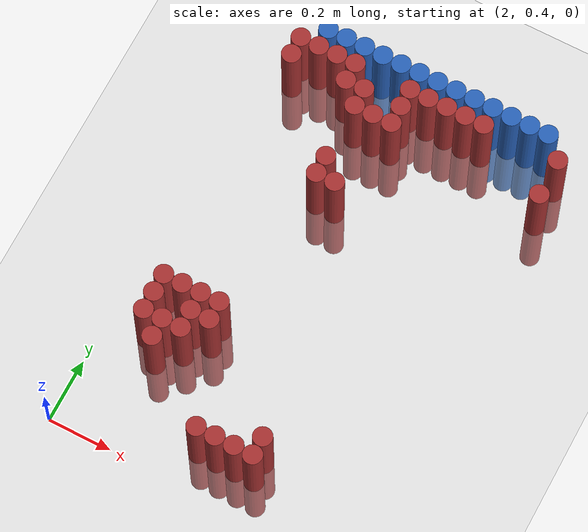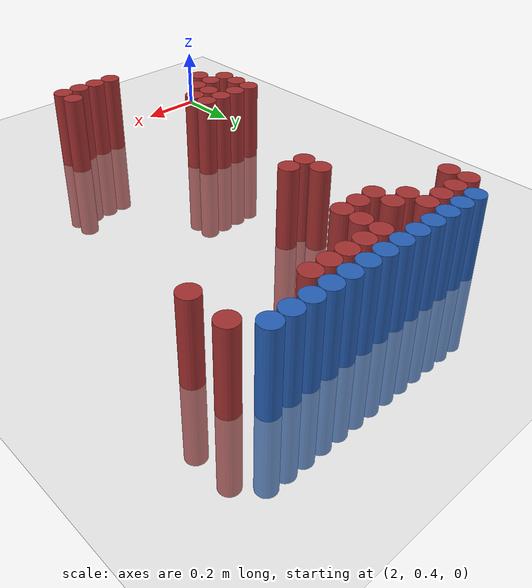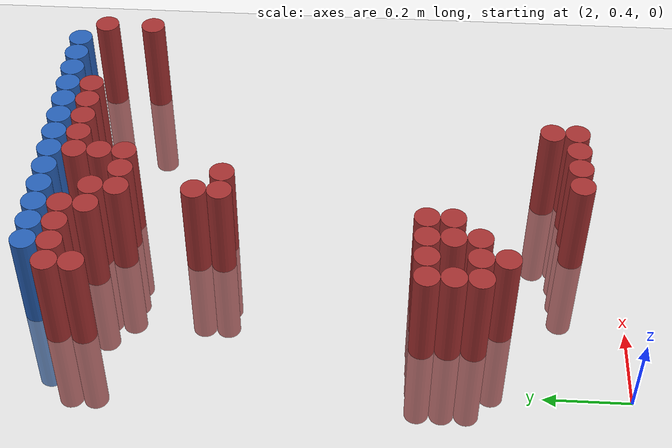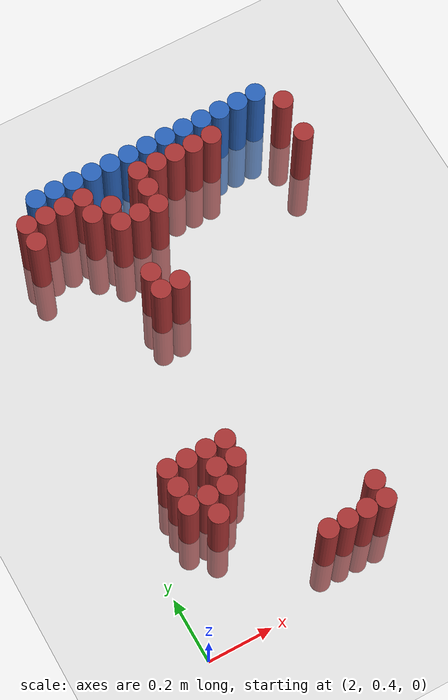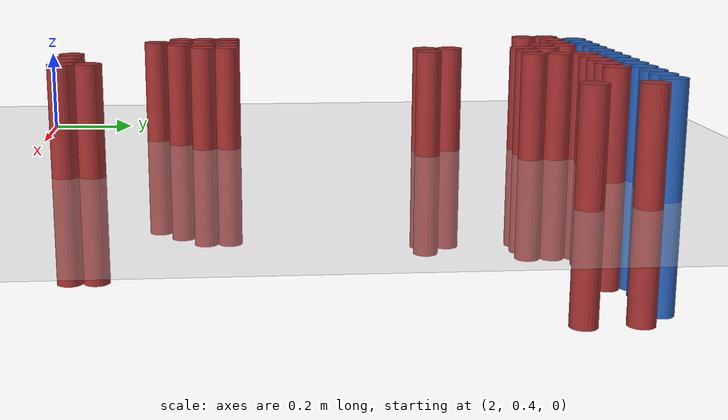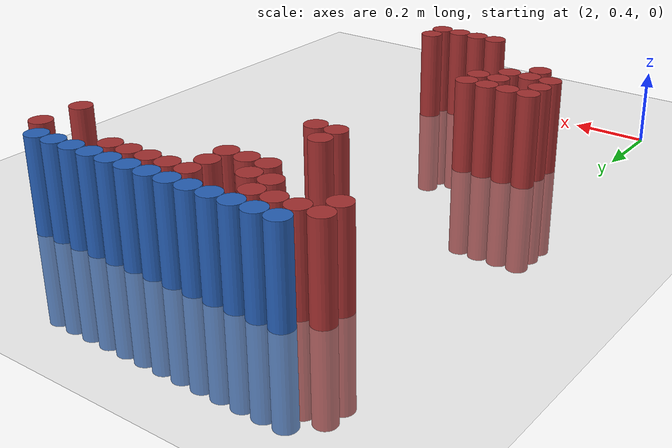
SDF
<sdf version="1.6">
 <world name="default">
  <model name="ground_plane">
   <static>1</static>
   <link name="link">
    <collision name="collision">
     <geometry><plane><normal>0 0 1</normal><size>100 100</size></plane></geometry>
     <surface><friction><ode><mu>100</mu><mu2>50</mu2></ode></friction></surface>
    </collision>
    <visual name="visual">
     <cast_shadows>0</cast_shadows>
     <geometry><plane><normal>0 0 1</normal><size>100 100</size></plane></geometry>
     <material>
      <script><uri>file://media/materials/scripts/gazebo.material</uri><name>Gazebo/Grey</name></script>
     </material>
    </visual>
   </link>
  </model>
  <model name="unit_cylinder_97">
   <static>1</static>
   <pose>2.190000 1.770000 0.000000 0.000000 0.000000 0.000000</pose>
   <link name="link">
    <inertial>
     <mass>1</mass>
     <inertia><ixx>0.145833</ixx><ixy>0</ixy><ixz>0</ixz><iyy>0.145833</iyy><iyz>0</iyz><izz>0.125</izz></inertia>
    </inertial>
    <collision name="collision">
     <geometry><cylinder><radius>0.030000</radius><length>0.5</length></cylinder></geometry>
    </collision>
    <visual name="visual">
     <geometry><cylinder><radius>0.030000</radius><length>0.5</length></cylinder></geometry>
     <material>
      <ambient>0.152000 0.379000 0.720000 1</ambient>
      <diffuse>0.152000 0.379000 0.720000 1</diffuse>
     </material>
     <material>
      <script><name>Gazebo/Grey</name><uri>file://media/materials/scripts/gazebo.material</uri></script>
     </material>
    </visual>
   </link>
  </model>
  <model name="unit_cylinder_98">
   <static>1</static>
   <pose>2.250000 1.770000 0.000000 0.000000 0.000000 0.000000</pose>
   <link name="link">
    <inertial>
     <mass>1</mass>
     <inertia><ixx>0.145833</ixx><ixy>0</ixy><ixz>0</ixz><iyy>0.145833</iyy><iyz>0</iyz><izz>0.125</izz></inertia>
    </inertial>
    <collision name="collision">
     <geometry><cylinder><radius>0.030000</radius><length>0.5</length></cylinder></geometry>
    </collision>
    <visual name="visual">
     <geometry><cylinder><radius>0.030000</radius><length>0.5</length></cylinder></geometry>
     <material>
      <ambient>0.152000 0.379000 0.720000 1</ambient>
      <diffuse>0.152000 0.379000 0.720000 1</diffuse>
     </material>
     <material>
      <script><name>Gazebo/Grey</name><uri>file://media/materials/scripts/gazebo.material</uri></script>
     </material>
    </visual>
   </link>
  </model>
  <model name="unit_cylinder_99">
   <static>1</static>
   <pose>2.310000 1.770000 0.000000 0.000000 0.000000 0.000000</pose>
   <link name="link">
    <inertial>
     <mass>1</mass>
     <inertia><ixx>0.145833</ixx><ixy>0</ixy><ixz>0</ixz><iyy>0.145833</iyy><iyz>0</iyz><izz>0.125</izz></inertia>
    </inertial>
    <collision name="collision">
     <geometry><cylinder><radius>0.030000</radius><length>0.5</length></cylinder></geometry>
    </collision>
    <visual name="visual">
     <geometry><cylinder><radius>0.030000</radius><length>0.5</length></cylinder></geometry>
     <material>
      <ambient>0.152000 0.379000 0.720000 1</ambient>
      <diffuse>0.152000 0.379000 0.720000 1</diffuse>
     </material>
     <material>
      <script><name>Gazebo/Grey</name><uri>file://media/materials/scripts/gazebo.material</uri></script>
     </material>
    </visual>
   </link>
  </model>
  <model name="unit_cylinder_100">
   <static>1</static>
   <pose>2.370000 1.770000 0.000000 0.000000 0.000000 0.000000</pose>
   <link name="link">
    <inertial>
     <mass>1</mass>
     <inertia><ixx>0.145833</ixx><ixy>0</ixy><ixz>0</ixz><iyy>0.145833</iyy><iyz>0</iyz><izz>0.125</izz></inertia>
    </inertial>
    <collision name="collision">
     <geometry><cylinder><radius>0.030000</radius><length>0.5</length></cylinder></geometry>
    </collision>
    <visual name="visual">
     <geometry><cylinder><radius>0.030000</radius><length>0.5</length></cylinder></geometry>
     <material>
      <ambient>0.152000 0.379000 0.720000 1</ambient>
      <diffuse>0.152000 0.379000 0.720000 1</diffuse>
     </material>
     <material>
      <script><name>Gazebo/Grey</name><uri>file://media/materials/scripts/gazebo.material</uri></script>
     </material>
    </visual>
   </link>
  </model>
  <model name="unit_cylinder_101">
   <static>1</static>
   <pose>2.430000 1.770000 0.000000 0.000000 0.000000 0.000000</pose>
   <link name="link">
    <inertial>
     <mass>1</mass>
     <inertia><ixx>0.145833</ixx><ixy>0</ixy><ixz>0</ixz><iyy>0.145833</iyy><iyz>0</iyz><izz>0.125</izz></inertia>
    </inertial>
    <collision name="collision">
     <geometry><cylinder><radius>0.030000</radius><length>0.5</length></cylinder></geometry>
    </collision>
    <visual name="visual">
     <geometry><cylinder><radius>0.030000</radius><length>0.5</length></cylinder></geometry>
     <material>
      <ambient>0.152000 0.379000 0.720000 1</ambient>
      <diffuse>0.152000 0.379000 0.720000 1</diffuse>
     </material>
     <material>
      <script><name>Gazebo/Grey</name><uri>file://media/materials/scripts/gazebo.material</uri></script>
     </material>
    </visual>
   </link>
  </model>
  <model name="unit_cylinder_102">
   <static>1</static>
   <pose>2.490000 1.770000 0.000000 0.000000 0.000000 0.000000</pose>
   <link name="link">
    <inertial>
     <mass>1</mass>
     <inertia><ixx>0.145833</ixx><ixy>0</ixy><ixz>0</ixz><iyy>0.145833</iyy><iyz>0</iyz><izz>0.125</izz></inertia>
    </inertial>
    <collision name="collision">
     <geometry><cylinder><radius>0.030000</radius><length>0.5</length></cylinder></geometry>
    </collision>
    <visual name="visual">
     <geometry><cylinder><radius>0.030000</radius><length>0.5</length></cylinder></geometry>
     <material>
      <ambient>0.152000 0.379000 0.720000 1</ambient>
      <diffuse>0.152000 0.379000 0.720000 1</diffuse>
     </material>
     <material>
      <script><name>Gazebo/Grey</name><uri>file://media/materials/scripts/gazebo.material</uri></script>
     </material>
    </visual>
   </link>
  </model>
  <model name="unit_cylinder_103">
   <static>1</static>
   <pose>2.550000 1.770000 0.000000 0.000000 0.000000 0.000000</pose>
   <link name="link">
    <inertial>
     <mass>1</mass>
     <inertia><ixx>0.145833</ixx><ixy>0</ixy><ixz>0</ixz><iyy>0.145833</iyy><iyz>0</iyz><izz>0.125</izz></inertia>
    </inertial>
    <collision name="collision">
     <geometry><cylinder><radius>0.030000</radius><length>0.5</length></cylinder></geometry>
    </collision>
    <visual name="visual">
     <geometry><cylinder><radius>0.030000</radius><length>0.5</length></cylinder></geometry>
     <material>
      <ambient>0.152000 0.379000 0.720000 1</ambient>
      <diffuse>0.152000 0.379000 0.720000 1</diffuse>
     </material>
     <material>
      <script><name>Gazebo/Grey</name><uri>file://media/materials/scripts/gazebo.material</uri></script>
     </material>
    </visual>
   </link>
  </model>
  <model name="unit_cylinder_104">
   <static>1</static>
   <pose>2.610000 1.770000 0.000000 0.000000 0.000000 0.000000</pose>
   <link name="link">
    <inertial>
     <mass>1</mass>
     <inertia><ixx>0.145833</ixx><ixy>0</ixy><ixz>0</ixz><iyy>0.145833</iyy><iyz>0</iyz><izz>0.125</izz></inertia>
    </inertial>
    <collision name="collision">
     <geometry><cylinder><radius>0.030000</radius><length>0.5</length></cylinder></geometry>
    </collision>
    <visual name="visual">
     <geometry><cylinder><radius>0.030000</radius><length>0.5</length></cylinder></geometry>
     <material>
      <ambient>0.152000 0.379000 0.720000 1</ambient>
      <diffuse>0.152000 0.379000 0.720000 1</diffuse>
     </material>
     <material>
      <script><name>Gazebo/Grey</name><uri>file://media/materials/scripts/gazebo.material</uri></script>
     </material>
    </visual>
   </link>
  </model>
  <model name="unit_cylinder_105">
   <static>1</static>
   <pose>2.670000 1.770000 0.000000 0.000000 0.000000 0.000000</pose>
   <link name="link">
    <inertial>
     <mass>1</mass>
     <inertia><ixx>0.145833</ixx><ixy>0</ixy><ixz>0</ixz><iyy>0.145833</iyy><iyz>0</iyz><izz>0.125</izz></inertia>
    </inertial>
    <collision name="collision">
     <geometry><cylinder><radius>0.030000</radius><length>0.5</length></cylinder></geometry>
    </collision>
    <visual name="visual">
     <geometry><cylinder><radius>0.030000</radius><length>0.5</length></cylinder></geometry>
     <material>
      <ambient>0.152000 0.379000 0.720000 1</ambient>
      <diffuse>0.152000 0.379000 0.720000 1</diffuse>
     </material>
     <material>
      <script><name>Gazebo/Grey</name><uri>file://media/materials/scripts/gazebo.material</uri></script>
     </material>
    </visual>
   </link>
  </model>
  <model name="unit_cylinder_106">
   <static>1</static>
   <pose>2.730000 1.770000 0.000000 0.000000 0.000000 0.000000</pose>
   <link name="link">
    <inertial>
     <mass>1</mass>
     <inertia><ixx>0.145833</ixx><ixy>0</ixy><ixz>0</ixz><iyy>0.145833</iyy><iyz>0</iyz><izz>0.125</izz></inertia>
    </inertial>
    <collision name="collision">
     <geometry><cylinder><radius>0.030000</radius><length>0.5</length></cylinder></geometry>
    </collision>
    <visual name="visual">
     <geometry><cylinder><radius>0.030000</radius><length>0.5</length></cylinder></geometry>
     <material>
      <ambient>0.152000 0.379000 0.720000 1</ambient>
      <diffuse>0.152000 0.379000 0.720000 1</diffuse>
     </material>
     <material>
      <script><name>Gazebo/Grey</name><uri>file://media/materials/scripts/gazebo.material</uri></script>
     </material>
    </visual>
   </link>
  </model>
  <model name="unit_cylinder_107">
   <static>1</static>
   <pose>2.790000 1.770000 0.000000 0.000000 0.000000 0.000000</pose>
   <link name="link">
    <inertial>
     <mass>1</mass>
     <inertia><ixx>0.145833</ixx><ixy>0</ixy><ixz>0</ixz><iyy>0.145833</iyy><iyz>0</iyz><izz>0.125</izz></inertia>
    </inertial>
    <collision name="collision">
     <geometry><cylinder><radius>0.030000</radius><length>0.5</length></cylinder></geometry>
    </collision>
    <visual name="visual">
     <geometry><cylinder><radius>0.030000</radius><length>0.5</length></cylinder></geometry>
     <material>
      <ambient>0.152000 0.379000 0.720000 1</ambient>
      <diffuse>0.152000 0.379000 0.720000 1</diffuse>
     </material>
     <material>
      <script><name>Gazebo/Grey</name><uri>file://media/materials/scripts/gazebo.material</uri></script>
     </material>
    </visual>
   </link>
  </model>
  <model name="unit_cylinder_108">
   <static>1</static>
   <pose>2.850000 1.770000 0.000000 0.000000 0.000000 0.000000</pose>
   <link name="link">
    <inertial>
     <mass>1</mass>
     <inertia><ixx>0.145833</ixx><ixy>0</ixy><ixz>0</ixz><iyy>0.145833</iyy><iyz>0</iyz><izz>0.125</izz></inertia>
    </inertial>
    <collision name="collision">
     <geometry><cylinder><radius>0.030000</radius><length>0.5</length></cylinder></geometry>
    </collision>
    <visual name="visual">
     <geometry><cylinder><radius>0.030000</radius><length>0.5</length></cylinder></geometry>
     <material>
      <ambient>0.152000 0.379000 0.720000 1</ambient>
      <diffuse>0.152000 0.379000 0.720000 1</diffuse>
     </material>
     <material>
      <script><name>Gazebo/Grey</name><uri>file://media/materials/scripts/gazebo.material</uri></script>
     </material>
    </visual>
   </link>
  </model>
  <model name="unit_cylinder_109">
   <static>1</static>
   <pose>2.910000 1.770000 0.000000 0.000000 0.000000 0.000000</pose>
   <link name="link">
    <inertial>
     <mass>1</mass>
     <inertia><ixx>0.145833</ixx><ixy>0</ixy><ixz>0</ixz><iyy>0.145833</iyy><iyz>0</iyz><izz>0.125</izz></inertia>
    </inertial>
    <collision name="collision">
     <geometry><cylinder><radius>0.030000</radius><length>0.5</length></cylinder></geometry>
    </collision>
    <visual name="visual">
     <geometry><cylinder><radius>0.030000</radius><length>0.5</length></cylinder></geometry>
     <material>
      <ambient>0.152000 0.379000 0.720000 1</ambient>
      <diffuse>0.152000 0.379000 0.720000 1</diffuse>
     </material>
     <material>
      <script><name>Gazebo/Grey</name><uri>file://media/materials/scripts/gazebo.material</uri></script>
     </material>
    </visual>
   </link>
  </model>
  <model name="unit_cylinder_125">
   <static>1</static>
   <pose>2.130000 1.710000 0.000000 0.000000 0.000000 0.000000</pose>
   <link name="link">
    <inertial>
     <mass>1</mass>
     <inertia><ixx>0.145833</ixx><ixy>0</ixy><ixz>0</ixz><iyy>0.145833</iyy><iyz>0</iyz><izz>0.125</izz></inertia>
    </inertial>
    <collision name="collision">
     <geometry><cylinder><radius>0.030000</radius><length>0.5</length></cylinder></geometry>
    </collision>
    <visual name="visual">
     <geometry><cylinder><radius>0.030000</radius><length>0.5</length></cylinder></geometry>
     <material>
      <ambient>0.648000 0.192000 0.192000 1</ambient>
      <diffuse>0.648000 0.192000 0.192000 1</diffuse>
     </material>
     <material>
      <script><name>Gazebo/Grey</name><uri>file://media/materials/scripts/gazebo.material</uri></script>
     </material>
    </visual>
   </link>
  </model>
  <model name="unit_cylinder_126">
   <static>1</static>
   <pose>2.190000 1.710000 0.000000 0.000000 0.000000 0.000000</pose>
   <link name="link">
    <inertial>
     <mass>1</mass>
     <inertia><ixx>0.145833</ixx><ixy>0</ixy><ixz>0</ixz><iyy>0.145833</iyy><iyz>0</iyz><izz>0.125</izz></inertia>
    </inertial>
    <collision name="collision">
     <geometry><cylinder><radius>0.030000</radius><length>0.5</length></cylinder></geometry>
    </collision>
    <visual name="visual">
     <geometry><cylinder><radius>0.030000</radius><length>0.5</length></cylinder></geometry>
     <material>
      <ambient>0.648000 0.192000 0.192000 1</ambient>
      <diffuse>0.648000 0.192000 0.192000 1</diffuse>
     </material>
     <material>
      <script><name>Gazebo/Grey</name><uri>file://media/materials/scripts/gazebo.material</uri></script>
     </material>
    </visual>
   </link>
  </model>
  <model name="unit_cylinder_127">
   <static>1</static>
   <pose>2.250000 1.710000 0.000000 0.000000 0.000000 0.000000</pose>
   <link name="link">
    <inertial>
     <mass>1</mass>
     <inertia><ixx>0.145833</ixx><ixy>0</ixy><ixz>0</ixz><iyy>0.145833</iyy><iyz>0</iyz><izz>0.125</izz></inertia>
    </inertial>
    <collision name="collision">
     <geometry><cylinder><radius>0.030000</radius><length>0.5</length></cylinder></geometry>
    </collision>
    <visual name="visual">
     <geometry><cylinder><radius>0.030000</radius><length>0.5</length></cylinder></geometry>
     <material>
      <ambient>0.648000 0.192000 0.192000 1</ambient>
      <diffuse>0.648000 0.192000 0.192000 1</diffuse>
     </material>
     <material>
      <script><name>Gazebo/Grey</name><uri>file://media/materials/scripts/gazebo.material</uri></script>
     </material>
    </visual>
   </link>
  </model>
  <model name="unit_cylinder_128">
   <static>1</static>
   <pose>2.310000 1.710000 0.000000 0.000000 0.000000 0.000000</pose>
   <link name="link">
    <inertial>
     <mass>1</mass>
     <inertia><ixx>0.145833</ixx><ixy>0</ixy><ixz>0</ixz><iyy>0.145833</iyy><iyz>0</iyz><izz>0.125</izz></inertia>
    </inertial>
    <collision name="collision">
     <geometry><cylinder><radius>0.030000</radius><length>0.5</length></cylinder></geometry>
    </collision>
    <visual name="visual">
     <geometry><cylinder><radius>0.030000</radius><length>0.5</length></cylinder></geometry>
     <material>
      <ambient>0.648000 0.192000 0.192000 1</ambient>
      <diffuse>0.648000 0.192000 0.192000 1</diffuse>
     </material>
     <material>
      <script><name>Gazebo/Grey</name><uri>file://media/materials/scripts/gazebo.material</uri></script>
     </material>
    </visual>
   </link>
  </model>
  <model name="unit_cylinder_129">
   <static>1</static>
   <pose>2.490000 1.710000 0.000000 0.000000 0.000000 0.000000</pose>
   <link name="link">
    <inertial>
     <mass>1</mass>
     <inertia><ixx>0.145833</ixx><ixy>0</ixy><ixz>0</ixz><iyy>0.145833</iyy><iyz>0</iyz><izz>0.125</izz></inertia>
    </inertial>
    <collision name="collision">
     <geometry><cylinder><radius>0.030000</radius><length>0.5</length></cylinder></geometry>
    </collision>
    <visual name="visual">
     <geometry><cylinder><radius>0.030000</radius><length>0.5</length></cylinder></geometry>
     <material>
      <ambient>0.648000 0.192000 0.192000 1</ambient>
      <diffuse>0.648000 0.192000 0.192000 1</diffuse>
     </material>
     <material>
      <script><name>Gazebo/Grey</name><uri>file://media/materials/scripts/gazebo.material</uri></script>
     </material>
    </visual>
   </link>
  </model>
  <model name="unit_cylinder_130">
   <static>1</static>
   <pose>2.550000 1.710000 0.000000 0.000000 0.000000 0.000000</pose>
   <link name="link">
    <inertial>
     <mass>1</mass>
     <inertia><ixx>0.145833</ixx><ixy>0</ixy><ixz>0</ixz><iyy>0.145833</iyy><iyz>0</iyz><izz>0.125</izz></inertia>
    </inertial>
    <collision name="collision">
     <geometry><cylinder><radius>0.030000</radius><length>0.5</length></cylinder></geometry>
    </collision>
    <visual name="visual">
     <geometry><cylinder><radius>0.030000</radius><length>0.5</length></cylinder></geometry>
     <material>
      <ambient>0.648000 0.192000 0.192000 1</ambient>
      <diffuse>0.648000 0.192000 0.192000 1</diffuse>
     </material>
     <material>
      <script><name>Gazebo/Grey</name><uri>file://media/materials/scripts/gazebo.material</uri></script>
     </material>
    </visual>
   </link>
  </model>
  <model name="unit_cylinder_131">
   <static>1</static>
   <pose>2.610000 1.710000 0.000000 0.000000 0.000000 0.000000</pose>
   <link name="link">
    <inertial>
     <mass>1</mass>
     <inertia><ixx>0.145833</ixx><ixy>0</ixy><ixz>0</ixz><iyy>0.145833</iyy><iyz>0</iyz><izz>0.125</izz></inertia>
    </inertial>
    <collision name="collision">
     <geometry><cylinder><radius>0.030000</radius><length>0.5</length></cylinder></geometry>
    </collision>
    <visual name="visual">
     <geometry><cylinder><radius>0.030000</radius><length>0.5</length></cylinder></geometry>
     <material>
      <ambient>0.648000 0.192000 0.192000 1</ambient>
      <diffuse>0.648000 0.192000 0.192000 1</diffuse>
     </material>
     <material>
      <script><name>Gazebo/Grey</name><uri>file://media/materials/scripts/gazebo.material</uri></script>
     </material>
    </visual>
   </link>
  </model>
  <model name="unit_cylinder_132">
   <static>1</static>
   <pose>2.670000 1.710000 0.000000 0.000000 0.000000 0.000000</pose>
   <link name="link">
    <inertial>
     <mass>1</mass>
     <inertia><ixx>0.145833</ixx><ixy>0</ixy><ixz>0</ixz><iyy>0.145833</iyy><iyz>0</iyz><izz>0.125</izz></inertia>
    </inertial>
    <collision name="collision">
     <geometry><cylinder><radius>0.030000</radius><length>0.5</length></cylinder></geometry>
    </collision>
    <visual name="visual">
     <geometry><cylinder><radius>0.030000</radius><length>0.5</length></cylinder></geometry>
     <material>
      <ambient>0.648000 0.192000 0.192000 1</ambient>
      <diffuse>0.648000 0.192000 0.192000 1</diffuse>
     </material>
     <material>
      <script><name>Gazebo/Grey</name><uri>file://media/materials/scripts/gazebo.material</uri></script>
     </material>
    </visual>
   </link>
  </model>
  <model name="unit_cylinder_133">
   <static>1</static>
   <pose>2.730000 1.710000 0.000000 0.000000 0.000000 0.000000</pose>
   <link name="link">
    <inertial>
     <mass>1</mass>
     <inertia><ixx>0.145833</ixx><ixy>0</ixy><ixz>0</ixz><iyy>0.145833</iyy><iyz>0</iyz><izz>0.125</izz></inertia>
    </inertial>
    <collision name="collision">
     <geometry><cylinder><radius>0.030000</radius><length>0.5</length></cylinder></geometry>
    </collision>
    <visual name="visual">
     <geometry><cylinder><radius>0.030000</radius><length>0.5</length></cylinder></geometry>
     <material>
      <ambient>0.648000 0.192000 0.192000 1</ambient>
      <diffuse>0.648000 0.192000 0.192000 1</diffuse>
     </material>
     <material>
      <script><name>Gazebo/Grey</name><uri>file://media/materials/scripts/gazebo.material</uri></script>
     </material>
    </visual>
   </link>
  </model>
  <model name="unit_cylinder_134">
   <static>1</static>
   <pose>2.970000 1.710000 0.000000 0.000000 0.000000 0.000000</pose>
   <link name="link">
    <inertial>
     <mass>1</mass>
     <inertia><ixx>0.145833</ixx><ixy>0</ixy><ixz>0</ixz><iyy>0.145833</iyy><iyz>0</iyz><izz>0.125</izz></inertia>
    </inertial>
    <collision name="collision">
     <geometry><cylinder><radius>0.030000</radius><length>0.5</length></cylinder></geometry>
    </collision>
    <visual name="visual">
     <geometry><cylinder><radius>0.030000</radius><length>0.5</length></cylinder></geometry>
     <material>
      <ambient>0.648000 0.192000 0.192000 1</ambient>
      <diffuse>0.648000 0.192000 0.192000 1</diffuse>
     </material>
     <material>
      <script><name>Gazebo/Grey</name><uri>file://media/materials/scripts/gazebo.material</uri></script>
     </material>
    </visual>
   </link>
  </model>
  <model name="unit_cylinder_138">
   <static>1</static>
   <pose>2.130000 1.650000 0.000000 0.000000 0.000000 0.000000</pose>
   <link name="link">
    <inertial>
     <mass>1</mass>
     <inertia><ixx>0.145833</ixx><ixy>0</ixy><ixz>0</ixz><iyy>0.145833</iyy><iyz>0</iyz><izz>0.125</izz></inertia>
    </inertial>
    <collision name="collision">
     <geometry><cylinder><radius>0.030000</radius><length>0.5</length></cylinder></geometry>
    </collision>
    <visual name="visual">
     <geometry><cylinder><radius>0.030000</radius><length>0.5</length></cylinder></geometry>
     <material>
      <ambient>0.648000 0.192000 0.192000 1</ambient>
      <diffuse>0.648000 0.192000 0.192000 1</diffuse>
     </material>
     <material>
      <script><name>Gazebo/Grey</name><uri>file://media/materials/scripts/gazebo.material</uri></script>
     </material>
    </visual>
   </link>
  </model>
  <model name="unit_cylinder_139">
   <static>1</static>
   <pose>2.310000 1.650000 0.000000 0.000000 0.000000 0.000000</pose>
   <link name="link">
    <inertial>
     <mass>1</mass>
     <inertia><ixx>0.145833</ixx><ixy>0</ixy><ixz>0</ixz><iyy>0.145833</iyy><iyz>0</iyz><izz>0.125</izz></inertia>
    </inertial>
    <collision name="collision">
     <geometry><cylinder><radius>0.030000</radius><length>0.5</length></cylinder></geometry>
    </collision>
    <visual name="visual">
     <geometry><cylinder><radius>0.030000</radius><length>0.5</length></cylinder></geometry>
     <material>
      <ambient>0.648000 0.192000 0.192000 1</ambient>
      <diffuse>0.648000 0.192000 0.192000 1</diffuse>
     </material>
     <material>
      <script><name>Gazebo/Grey</name><uri>file://media/materials/scripts/gazebo.material</uri></script>
     </material>
    </visual>
   </link>
  </model>
  <model name="unit_cylinder_140">
   <static>1</static>
   <pose>2.370000 1.650000 0.000000 0.000000 0.000000 0.000000</pose>
   <link name="link">
    <inertial>
     <mass>1</mass>
     <inertia><ixx>0.145833</ixx><ixy>0</ixy><ixz>0</ixz><iyy>0.145833</iyy><iyz>0</iyz><izz>0.125</izz></inertia>
    </inertial>
    <collision name="collision">
     <geometry><cylinder><radius>0.030000</radius><length>0.5</length></cylinder></geometry>
    </collision>
    <visual name="visual">
     <geometry><cylinder><radius>0.030000</radius><length>0.5</length></cylinder></geometry>
     <material>
      <ambient>0.648000 0.192000 0.192000 1</ambient>
      <diffuse>0.648000 0.192000 0.192000 1</diffuse>
     </material>
     <material>
      <script><name>Gazebo/Grey</name><uri>file://media/materials/scripts/gazebo.material</uri></script>
     </material>
    </visual>
   </link>
  </model>
  <model name="unit_cylinder_141">
   <static>1</static>
   <pose>2.490000 1.650000 0.000000 0.000000 0.000000 0.000000</pose>
   <link name="link">
    <inertial>
     <mass>1</mass>
     <inertia><ixx>0.145833</ixx><ixy>0</ixy><ixz>0</ixz><iyy>0.145833</iyy><iyz>0</iyz><izz>0.125</izz></inertia>
    </inertial>
    <collision name="collision">
     <geometry><cylinder><radius>0.030000</radius><length>0.5</length></cylinder></geometry>
    </collision>
    <visual name="visual">
     <geometry><cylinder><radius>0.030000</radius><length>0.5</length></cylinder></geometry>
     <material>
      <ambient>0.648000 0.192000 0.192000 1</ambient>
      <diffuse>0.648000 0.192000 0.192000 1</diffuse>
     </material>
     <material>
      <script><name>Gazebo/Grey</name><uri>file://media/materials/scripts/gazebo.material</uri></script>
     </material>
    </visual>
   </link>
  </model>
  <model name="unit_cylinder_145">
   <static>1</static>
   <pose>2.370000 1.590000 0.000000 0.000000 0.000000 0.000000</pose>
   <link name="link">
    <inertial>
     <mass>1</mass>
     <inertia><ixx>0.145833</ixx><ixy>0</ixy><ixz>0</ixz><iyy>0.145833</iyy><iyz>0</iyz><izz>0.125</izz></inertia>
    </inertial>
    <collision name="collision">
     <geometry><cylinder><radius>0.030000</radius><length>0.5</length></cylinder></geometry>
    </collision>
    <visual name="visual">
     <geometry><cylinder><radius>0.030000</radius><length>0.5</length></cylinder></geometry>
     <material>
      <ambient>0.648000 0.192000 0.192000 1</ambient>
      <diffuse>0.648000 0.192000 0.192000 1</diffuse>
     </material>
     <material>
      <script><name>Gazebo/Grey</name><uri>file://media/materials/scripts/gazebo.material</uri></script>
     </material>
    </visual>
   </link>
  </model>
  <model name="unit_cylinder_146">
   <static>1</static>
   <pose>2.430000 1.590000 0.000000 0.000000 0.000000 0.000000</pose>
   <link name="link">
    <inertial>
     <mass>1</mass>
     <inertia><ixx>0.145833</ixx><ixy>0</ixy><ixz>0</ixz><iyy>0.145833</iyy><iyz>0</iyz><izz>0.125</izz></inertia>
    </inertial>
    <collision name="collision">
     <geometry><cylinder><radius>0.030000</radius><length>0.5</length></cylinder></geometry>
    </collision>
    <visual name="visual">
     <geometry><cylinder><radius>0.030000</radius><length>0.5</length></cylinder></geometry>
     <material>
      <ambient>0.648000 0.192000 0.192000 1</ambient>
      <diffuse>0.648000 0.192000 0.192000 1</diffuse>
     </material>
     <material>
      <script><name>Gazebo/Grey</name><uri>file://media/materials/scripts/gazebo.material</uri></script>
     </material>
    </visual>
   </link>
  </model>
  <model name="unit_cylinder_147">
   <static>1</static>
   <pose>2.490000 1.590000 0.000000 0.000000 0.000000 0.000000</pose>
   <link name="link">
    <inertial>
     <mass>1</mass>
     <inertia><ixx>0.145833</ixx><ixy>0</ixy><ixz>0</ixz><iyy>0.145833</iyy><iyz>0</iyz><izz>0.125</izz></inertia>
    </inertial>
    <collision name="collision">
     <geometry><cylinder><radius>0.030000</radius><length>0.5</length></cylinder></geometry>
    </collision>
    <visual name="visual">
     <geometry><cylinder><radius>0.030000</radius><length>0.5</length></cylinder></geometry>
     <material>
      <ambient>0.648000 0.192000 0.192000 1</ambient>
      <diffuse>0.648000 0.192000 0.192000 1</diffuse>
     </material>
     <material>
      <script><name>Gazebo/Grey</name><uri>file://media/materials/scripts/gazebo.material</uri></script>
     </material>
    </visual>
   </link>
  </model>
  <model name="unit_cylinder_148">
   <static>1</static>
   <pose>2.970000 1.590000 0.000000 0.000000 0.000000 0.000000</pose>
   <link name="link">
    <inertial>
     <mass>1</mass>
     <inertia><ixx>0.145833</ixx><ixy>0</ixy><ixz>0</ixz><iyy>0.145833</iyy><iyz>0</iyz><izz>0.125</izz></inertia>
    </inertial>
    <collision name="collision">
     <geometry><cylinder><radius>0.030000</radius><length>0.5</length></cylinder></geometry>
    </collision>
    <visual name="visual">
     <geometry><cylinder><radius>0.030000</radius><length>0.5</length></cylinder></geometry>
     <material>
      <ambient>0.648000 0.192000 0.192000 1</ambient>
      <diffuse>0.648000 0.192000 0.192000 1</diffuse>
     </material>
     <material>
      <script><name>Gazebo/Grey</name><uri>file://media/materials/scripts/gazebo.material</uri></script>
     </material>
    </visual>
   </link>
  </model>
  <model name="unit_cylinder_160">
   <static>1</static>
   <pose>2.370000 1.410000 0.000000 0.000000 0.000000 0.000000</pose>
   <link name="link">
    <inertial>
     <mass>1</mass>
     <inertia><ixx>0.145833</ixx><ixy>0</ixy><ixz>0</ixz><iyy>0.145833</iyy><iyz>0</iyz><izz>0.125</izz></inertia>
    </inertial>
    <collision name="collision">
     <geometry><cylinder><radius>0.030000</radius><length>0.5</length></cylinder></geometry>
    </collision>
    <visual name="visual">
     <geometry><cylinder><radius>0.030000</radius><length>0.5</length></cylinder></geometry>
     <material>
      <ambient>0.648000 0.192000 0.192000 1</ambient>
      <diffuse>0.648000 0.192000 0.192000 1</diffuse>
     </material>
     <material>
      <script><name>Gazebo/Grey</name><uri>file://media/materials/scripts/gazebo.material</uri></script>
     </material>
    </visual>
   </link>
  </model>
  <model name="unit_cylinder_162">
   <static>1</static>
   <pose>2.370000 1.350000 0.000000 0.000000 0.000000 0.000000</pose>
   <link name="link">
    <inertial>
     <mass>1</mass>
     <inertia><ixx>0.145833</ixx><ixy>0</ixy><ixz>0</ixz><iyy>0.145833</iyy><iyz>0</iyz><izz>0.125</izz></inertia>
    </inertial>
    <collision name="collision">
     <geometry><cylinder><radius>0.030000</radius><length>0.5</length></cylinder></geometry>
    </collision>
    <visual name="visual">
     <geometry><cylinder><radius>0.030000</radius><length>0.5</length></cylinder></geometry>
     <material>
      <ambient>0.648000 0.192000 0.192000 1</ambient>
      <diffuse>0.648000 0.192000 0.192000 1</diffuse>
     </material>
     <material>
      <script><name>Gazebo/Grey</name><uri>file://media/materials/scripts/gazebo.material</uri></script>
     </material>
    </visual>
   </link>
  </model>
  <model name="unit_cylinder_163">
   <static>1</static>
   <pose>2.430000 1.350000 0.000000 0.000000 0.000000 0.000000</pose>
   <link name="link">
    <inertial>
     <mass>1</mass>
     <inertia><ixx>0.145833</ixx><ixy>0</ixy><ixz>0</ixz><iyy>0.145833</iyy><iyz>0</iyz><izz>0.125</izz></inertia>
    </inertial>
    <collision name="collision">
     <geometry><cylinder><radius>0.030000</radius><length>0.5</length></cylinder></geometry>
    </collision>
    <visual name="visual">
     <geometry><cylinder><radius>0.030000</radius><length>0.5</length></cylinder></geometry>
     <material>
      <ambient>0.648000 0.192000 0.192000 1</ambient>
      <diffuse>0.648000 0.192000 0.192000 1</diffuse>
     </material>
     <material>
      <script><name>Gazebo/Grey</name><uri>file://media/materials/scripts/gazebo.material</uri></script>
     </material>
    </visual>
   </link>
  </model>
  <model name="unit_cylinder_168">
   <static>1</static>
   <pose>2.130000 0.870000 0.000000 0.000000 0.000000 0.000000</pose>
   <link name="link">
    <inertial>
     <mass>1</mass>
     <inertia><ixx>0.145833</ixx><ixy>0</ixy><ixz>0</ixz><iyy>0.145833</iyy><iyz>0</iyz><izz>0.125</izz></inertia>
    </inertial>
    <collision name="collision">
     <geometry><cylinder><radius>0.030000</radius><length>0.5</length></cylinder></geometry>
    </collision>
    <visual name="visual">
     <geometry><cylinder><radius>0.030000</radius><length>0.5</length></cylinder></geometry>
     <material>
      <ambient>0.648000 0.192000 0.192000 1</ambient>
      <diffuse>0.648000 0.192000 0.192000 1</diffuse>
     </material>
     <material>
      <script><name>Gazebo/Grey</name><uri>file://media/materials/scripts/gazebo.material</uri></script>
     </material>
    </visual>
   </link>
  </model>
  <model name="unit_cylinder_169">
   <static>1</static>
   <pose>2.190000 0.870000 0.000000 0.000000 0.000000 0.000000</pose>
   <link name="link">
    <inertial>
     <mass>1</mass>
     <inertia><ixx>0.145833</ixx><ixy>0</ixy><ixz>0</ixz><iyy>0.145833</iyy><iyz>0</iyz><izz>0.125</izz></inertia>
    </inertial>
    <collision name="collision">
     <geometry><cylinder><radius>0.030000</radius><length>0.5</length></cylinder></geometry>
    </collision>
    <visual name="visual">
     <geometry><cylinder><radius>0.030000</radius><length>0.5</length></cylinder></geometry>
     <material>
      <ambient>0.648000 0.192000 0.192000 1</ambient>
      <diffuse>0.648000 0.192000 0.192000 1</diffuse>
     </material>
     <material>
      <script><name>Gazebo/Grey</name><uri>file://media/materials/scripts/gazebo.material</uri></script>
     </material>
    </visual>
   </link>
  </model>
  <model name="unit_cylinder_170">
   <static>1</static>
   <pose>2.250000 0.870000 0.000000 0.000000 0.000000 0.000000</pose>
   <link name="link">
    <inertial>
     <mass>1</mass>
     <inertia><ixx>0.145833</ixx><ixy>0</ixy><ixz>0</ixz><iyy>0.145833</iyy><iyz>0</iyz><izz>0.125</izz></inertia>
    </inertial>
    <collision name="collision">
     <geometry><cylinder><radius>0.030000</radius><length>0.5</length></cylinder></geometry>
    </collision>
    <visual name="visual">
     <geometry><cylinder><radius>0.030000</radius><length>0.5</length></cylinder></geometry>
     <material>
      <ambient>0.648000 0.192000 0.192000 1</ambient>
      <diffuse>0.648000 0.192000 0.192000 1</diffuse>
     </material>
     <material>
      <script><name>Gazebo/Grey</name><uri>file://media/materials/scripts/gazebo.material</uri></script>
     </material>
    </visual>
   </link>
  </model>
  <model name="unit_cylinder_171">
   <static>1</static>
   <pose>2.310000 0.870000 0.000000 0.000000 0.000000 0.000000</pose>
   <link name="link">
    <inertial>
     <mass>1</mass>
     <inertia><ixx>0.145833</ixx><ixy>0</ixy><ixz>0</ixz><iyy>0.145833</iyy><iyz>0</iyz><izz>0.125</izz></inertia>
    </inertial>
    <collision name="collision">
     <geometry><cylinder><radius>0.030000</radius><length>0.5</length></cylinder></geometry>
    </collision>
    <visual name="visual">
     <geometry><cylinder><radius>0.030000</radius><length>0.5</length></cylinder></geometry>
     <material>
      <ambient>0.648000 0.192000 0.192000 1</ambient>
      <diffuse>0.648000 0.192000 0.192000 1</diffuse>
     </material>
     <material>
      <script><name>Gazebo/Grey</name><uri>file://media/materials/scripts/gazebo.material</uri></script>
     </material>
    </visual>
   </link>
  </model>
  <model name="unit_cylinder_173">
   <static>1</static>
   <pose>2.130000 0.810000 0.000000 0.000000 0.000000 0.000000</pose>
   <link name="link">
    <inertial>
     <mass>1</mass>
     <inertia><ixx>0.145833</ixx><ixy>0</ixy><ixz>0</ixz><iyy>0.145833</iyy><iyz>0</iyz><izz>0.125</izz></inertia>
    </inertial>
    <collision name="collision">
     <geometry><cylinder><radius>0.030000</radius><length>0.5</length></cylinder></geometry>
    </collision>
    <visual name="visual">
     <geometry><cylinder><radius>0.030000</radius><length>0.5</length></cylinder></geometry>
     <material>
      <ambient>0.648000 0.192000 0.192000 1</ambient>
      <diffuse>0.648000 0.192000 0.192000 1</diffuse>
     </material>
     <material>
      <script><name>Gazebo/Grey</name><uri>file://media/materials/scripts/gazebo.material</uri></script>
     </material>
    </visual>
   </link>
  </model>
  <model name="unit_cylinder_174">
   <static>1</static>
   <pose>2.250000 0.810000 0.000000 0.000000 0.000000 0.000000</pose>
   <link name="link">
    <inertial>
     <mass>1</mass>
     <inertia><ixx>0.145833</ixx><ixy>0</ixy><ixz>0</ixz><iyy>0.145833</iyy><iyz>0</iyz><izz>0.125</izz></inertia>
    </inertial>
    <collision name="collision">
     <geometry><cylinder><radius>0.030000</radius><length>0.5</length></cylinder></geometry>
    </collision>
    <visual name="visual">
     <geometry><cylinder><radius>0.030000</radius><length>0.5</length></cylinder></geometry>
     <material>
      <ambient>0.648000 0.192000 0.192000 1</ambient>
      <diffuse>0.648000 0.192000 0.192000 1</diffuse>
     </material>
     <material>
      <script><name>Gazebo/Grey</name><uri>file://media/materials/scripts/gazebo.material</uri></script>
     </material>
    </visual>
   </link>
  </model>
  <model name="unit_cylinder_175">
   <static>1</static>
   <pose>2.310000 0.810000 0.000000 0.000000 0.000000 0.000000</pose>
   <link name="link">
    <inertial>
     <mass>1</mass>
     <inertia><ixx>0.145833</ixx><ixy>0</ixy><ixz>0</ixz><iyy>0.145833</iyy><iyz>0</iyz><izz>0.125</izz></inertia>
    </inertial>
    <collision name="collision">
     <geometry><cylinder><radius>0.030000</radius><length>0.5</length></cylinder></geometry>
    </collision>
    <visual name="visual">
     <geometry><cylinder><radius>0.030000</radius><length>0.5</length></cylinder></geometry>
     <material>
      <ambient>0.648000 0.192000 0.192000 1</ambient>
      <diffuse>0.648000 0.192000 0.192000 1</diffuse>
     </material>
     <material>
      <script><name>Gazebo/Grey</name><uri>file://media/materials/scripts/gazebo.material</uri></script>
     </material>
    </visual>
   </link>
  </model>
  <model name="unit_cylinder_176">
   <static>1</static>
   <pose>2.130000 0.750000 0.000000 0.000000 0.000000 0.000000</pose>
   <link name="link">
    <inertial>
     <mass>1</mass>
     <inertia><ixx>0.145833</ixx><ixy>0</ixy><ixz>0</ixz><iyy>0.145833</iyy><iyz>0</iyz><izz>0.125</izz></inertia>
    </inertial>
    <collision name="collision">
     <geometry><cylinder><radius>0.030000</radius><length>0.5</length></cylinder></geometry>
    </collision>
    <visual name="visual">
     <geometry><cylinder><radius>0.030000</radius><length>0.5</length></cylinder></geometry>
     <material>
      <ambient>0.648000 0.192000 0.192000 1</ambient>
      <diffuse>0.648000 0.192000 0.192000 1</diffuse>
     </material>
     <material>
      <script><name>Gazebo/Grey</name><uri>file://media/materials/scripts/gazebo.material</uri></script>
     </material>
    </visual>
   </link>
  </model>
  <model name="unit_cylinder_177">
   <static>1</static>
   <pose>2.190000 0.750000 0.000000 0.000000 0.000000 0.000000</pose>
   <link name="link">
    <inertial>
     <mass>1</mass>
     <inertia><ixx>0.145833</ixx><ixy>0</ixy><ixz>0</ixz><iyy>0.145833</iyy><iyz>0</iyz><izz>0.125</izz></inertia>
    </inertial>
    <collision name="collision">
     <geometry><cylinder><radius>0.030000</radius><length>0.5</length></cylinder></geometry>
    </collision>
    <visual name="visual">
     <geometry><cylinder><radius>0.030000</radius><length>0.5</length></cylinder></geometry>
     <material>
      <ambient>0.648000 0.192000 0.192000 1</ambient>
      <diffuse>0.648000 0.192000 0.192000 1</diffuse>
     </material>
     <material>
      <script><name>Gazebo/Grey</name><uri>file://media/materials/scripts/gazebo.material</uri></script>
     </material>
    </visual>
   </link>
  </model>
  <model name="unit_cylinder_178">
   <static>1</static>
   <pose>2.250000 0.750000 0.000000 0.000000 0.000000 0.000000</pose>
   <link name="link">
    <inertial>
     <mass>1</mass>
     <inertia><ixx>0.145833</ixx><ixy>0</ixy><ixz>0</ixz><iyy>0.145833</iyy><iyz>0</iyz><izz>0.125</izz></inertia>
    </inertial>
    <collision name="collision">
     <geometry><cylinder><radius>0.030000</radius><length>0.5</length></cylinder></geometry>
    </collision>
    <visual name="visual">
     <geometry><cylinder><radius>0.030000</radius><length>0.5</length></cylinder></geometry>
     <material>
      <ambient>0.648000 0.192000 0.192000 1</ambient>
      <diffuse>0.648000 0.192000 0.192000 1</diffuse>
     </material>
     <material>
      <script><name>Gazebo/Grey</name><uri>file://media/materials/scripts/gazebo.material</uri></script>
     </material>
    </visual>
   </link>
  </model>
  <model name="unit_cylinder_179">
   <static>1</static>
   <pose>2.190000 0.690000 0.000000 0.000000 0.000000 0.000000</pose>
   <link name="link">
    <inertial>
     <mass>1</mass>
     <inertia><ixx>0.145833</ixx><ixy>0</ixy><ixz>0</ixz><iyy>0.145833</iyy><iyz>0</iyz><izz>0.125</izz></inertia>
    </inertial>
    <collision name="collision">
     <geometry><cylinder><radius>0.030000</radius><length>0.5</length></cylinder></geometry>
    </collision>
    <visual name="visual">
     <geometry><cylinder><radius>0.030000</radius><length>0.5</length></cylinder></geometry>
     <material>
      <ambient>0.648000 0.192000 0.192000 1</ambient>
      <diffuse>0.648000 0.192000 0.192000 1</diffuse>
     </material>
     <material>
      <script><name>Gazebo/Grey</name><uri>file://media/materials/scripts/gazebo.material</uri></script>
     </material>
    </visual>
   </link>
  </model>
  <model name="unit_cylinder_183">
   <static>1</static>
   <pose>2.610000 0.570000 0.000000 0.000000 0.000000 0.000000</pose>
   <link name="link">
    <inertial>
     <mass>1</mass>
     <inertia><ixx>0.145833</ixx><ixy>0</ixy><ixz>0</ixz><iyy>0.145833</iyy><iyz>0</iyz><izz>0.125</izz></inertia>
    </inertial>
    <collision name="collision">
     <geometry><cylinder><radius>0.030000</radius><length>0.5</length></cylinder></geometry>
    </collision>
    <visual name="visual">
     <geometry><cylinder><radius>0.030000</radius><length>0.5</length></cylinder></geometry>
     <material>
      <ambient>0.648000 0.192000 0.192000 1</ambient>
      <diffuse>0.648000 0.192000 0.192000 1</diffuse>
     </material>
     <material>
      <script><name>Gazebo/Grey</name><uri>file://media/materials/scripts/gazebo.material</uri></script>
     </material>
    </visual>
   </link>
  </model>
  <model name="unit_cylinder_187">
   <static>1</static>
   <pose>2.430000 0.510000 0.000000 0.000000 0.000000 0.000000</pose>
   <link name="link">
    <inertial>
     <mass>1</mass>
     <inertia><ixx>0.145833</ixx><ixy>0</ixy><ixz>0</ixz><iyy>0.145833</iyy><iyz>0</iyz><izz>0.125</izz></inertia>
    </inertial>
    <collision name="collision">
     <geometry><cylinder><radius>0.030000</radius><length>0.5</length></cylinder></geometry>
    </collision>
    <visual name="visual">
     <geometry><cylinder><radius>0.030000</radius><length>0.5</length></cylinder></geometry>
     <material>
      <ambient>0.648000 0.192000 0.192000 1</ambient>
      <diffuse>0.648000 0.192000 0.192000 1</diffuse>
     </material>
     <material>
      <script><name>Gazebo/Grey</name><uri>file://media/materials/scripts/gazebo.material</uri></script>
     </material>
    </visual>
   </link>
  </model>
  <model name="unit_cylinder_188">
   <static>1</static>
   <pose>2.490000 0.510000 0.000000 0.000000 0.000000 0.000000</pose>
   <link name="link">
    <inertial>
     <mass>1</mass>
     <inertia><ixx>0.145833</ixx><ixy>0</ixy><ixz>0</ixz><iyy>0.145833</iyy><iyz>0</iyz><izz>0.125</izz></inertia>
    </inertial>
    <collision name="collision">
     <geometry><cylinder><radius>0.030000</radius><length>0.5</length></cylinder></geometry>
    </collision>
    <visual name="visual">
     <geometry><cylinder><radius>0.030000</radius><length>0.5</length></cylinder></geometry>
     <material>
      <ambient>0.648000 0.192000 0.192000 1</ambient>
      <diffuse>0.648000 0.192000 0.192000 1</diffuse>
     </material>
     <material>
      <script><name>Gazebo/Grey</name><uri>file://media/materials/scripts/gazebo.material</uri></script>
     </material>
    </visual>
   </link>
  </model>
  <model name="unit_cylinder_189">
   <static>1</static>
   <pose>2.550000 0.510000 0.000000 0.000000 0.000000 0.000000</pose>
   <link name="link">
    <inertial>
     <mass>1</mass>
     <inertia><ixx>0.145833</ixx><ixy>0</ixy><ixz>0</ixz><iyy>0.145833</iyy><iyz>0</iyz><izz>0.125</izz></inertia>
    </inertial>
    <collision name="collision">
     <geometry><cylinder><radius>0.030000</radius><length>0.5</length></cylinder></geometry>
    </collision>
    <visual name="visual">
     <geometry><cylinder><radius>0.030000</radius><length>0.5</length></cylinder></geometry>
     <material>
      <ambient>0.648000 0.192000 0.192000 1</ambient>
      <diffuse>0.648000 0.192000 0.192000 1</diffuse>
     </material>
     <material>
      <script><name>Gazebo/Grey</name><uri>file://media/materials/scripts/gazebo.material</uri></script>
     </material>
    </visual>
   </link>
  </model>
  <model name="unit_cylinder_190">
   <static>1</static>
   <pose>2.610000 0.510000 0.000000 0.000000 0.000000 0.000000</pose>
   <link name="link">
    <inertial>
     <mass>1</mass>
     <inertia><ixx>0.145833</ixx><ixy>0</ixy><ixz>0</ixz><iyy>0.145833</iyy><iyz>0</iyz><izz>0.125</izz></inertia>
    </inertial>
    <collision name="collision">
     <geometry><cylinder><radius>0.030000</radius><length>0.5</length></cylinder></geometry>
    </collision>
    <visual name="visual">
     <geometry><cylinder><radius>0.030000</radius><length>0.5</length></cylinder></geometry>
     <material>
      <ambient>0.648000 0.192000 0.192000 1</ambient>
      <diffuse>0.648000 0.192000 0.192000 1</diffuse>
     </material>
     <material>
      <script><name>Gazebo/Grey</name><uri>file://media/materials/scripts/gazebo.material</uri></script>
     </material>
    </visual>
   </link>
  </model>
 </world>
</sdf>
